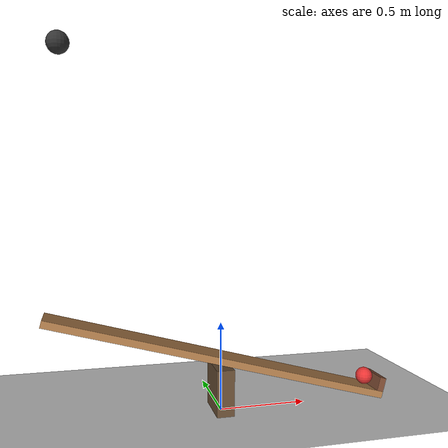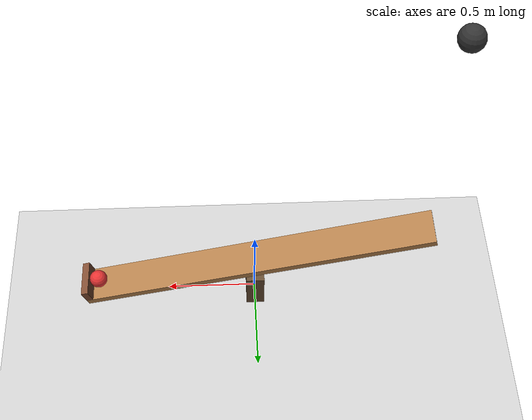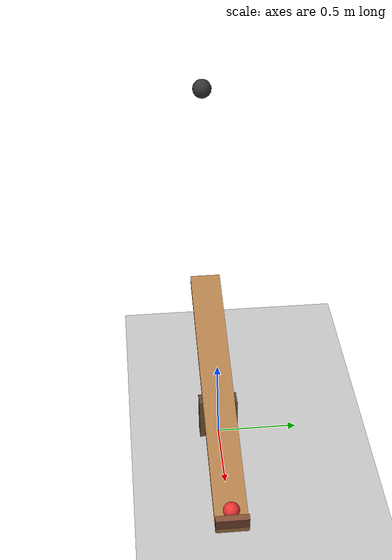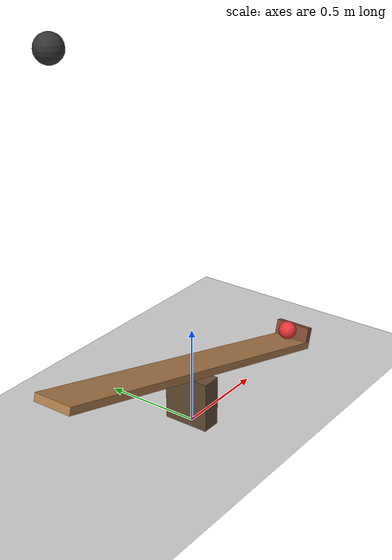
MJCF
<mujoco model="seesaw_launch">
  <compiler angle="radian"/>
  <option timestep="0.002"/>
  <worldbody>
    <light name="sun" pos="0 0 4" dir="0 0 -1"/>
    <geom name="floor" type="plane" size="5 5 0.1" rgba="0.8 0.8 0.8 1"/>
    <geom name="fulcrum" type="box" pos="0 0 0.13" size="0.05 0.12 0.13" contype="0" conaffinity="0" rgba="0.4 0.3 0.2 1"/>
    <body name="seesaw" pos="0 0 0.3" euler="0 0.27 0">
      <joint name="seesaw_hinge" type="hinge" axis="0 1 0" range="-0.54 0" limited="true" damping="0.01"/>
      <geom name="seesaw_plank" type="box" size="1.0 0.1 0.02" mass="0.5" rgba="0.7 0.5 0.3 1"/>
      <geom name="seesaw_lip" type="box" pos="0.98 0 0.06" size="0.02 0.1 0.04" mass="0.02" rgba="0.5 0.3 0.2 1"/>
    </body>
    <body name="weight" pos="-0.86 0 2.0">
      <freejoint/>
      <geom name="weight" type="sphere" size="0.06" mass="1.0" rgba="0.2 0.2 0.2 1"/>
    </body>
    <body name="ball" pos="0.896 0 0.126">
      <freejoint/>
      <geom name="ball" type="sphere" size="0.05" mass="0.1" rgba="0.9 0.2 0.2 1"/>
    </body>
  </worldbody>
</mujoco>
